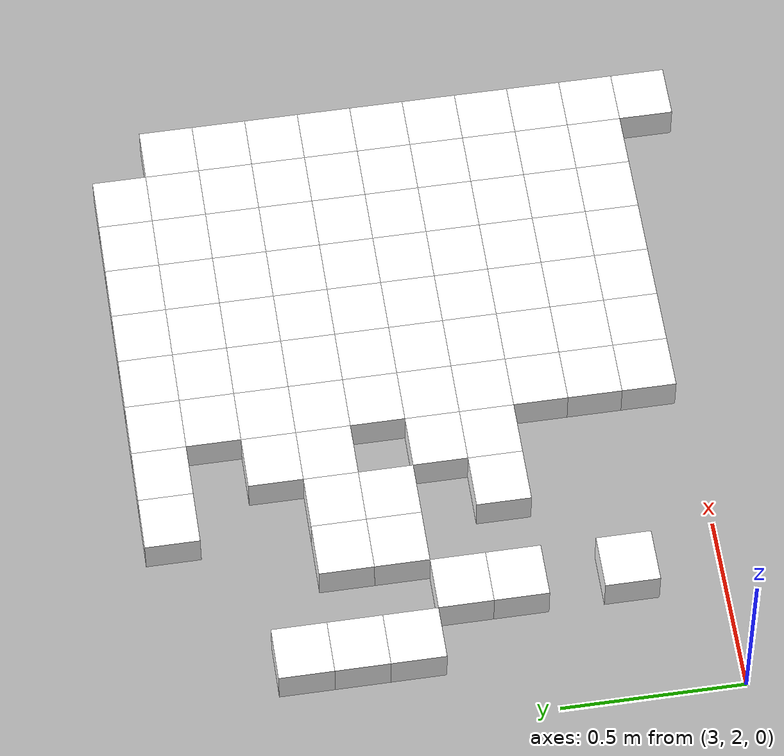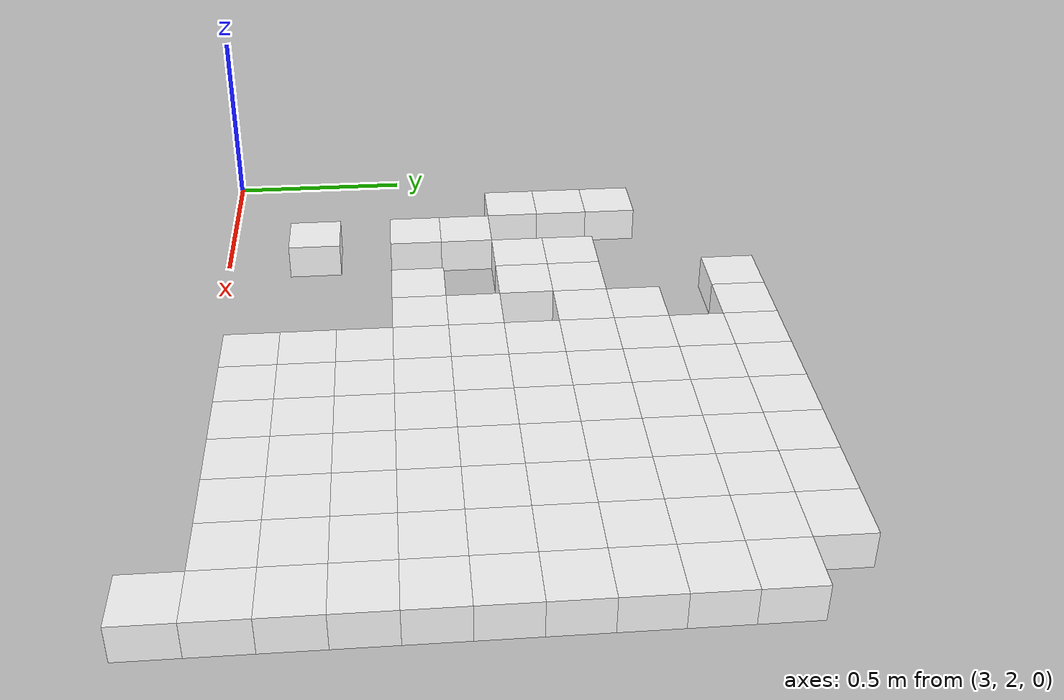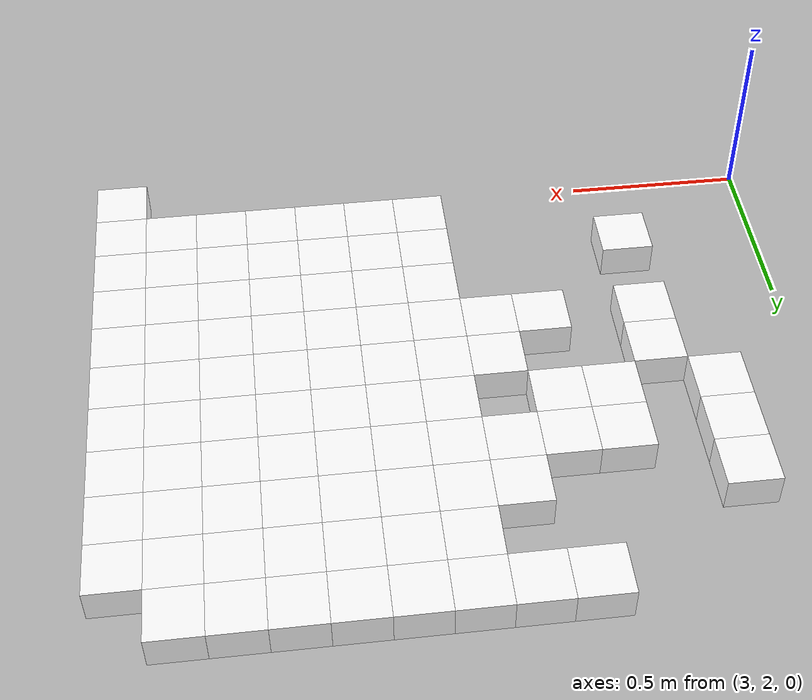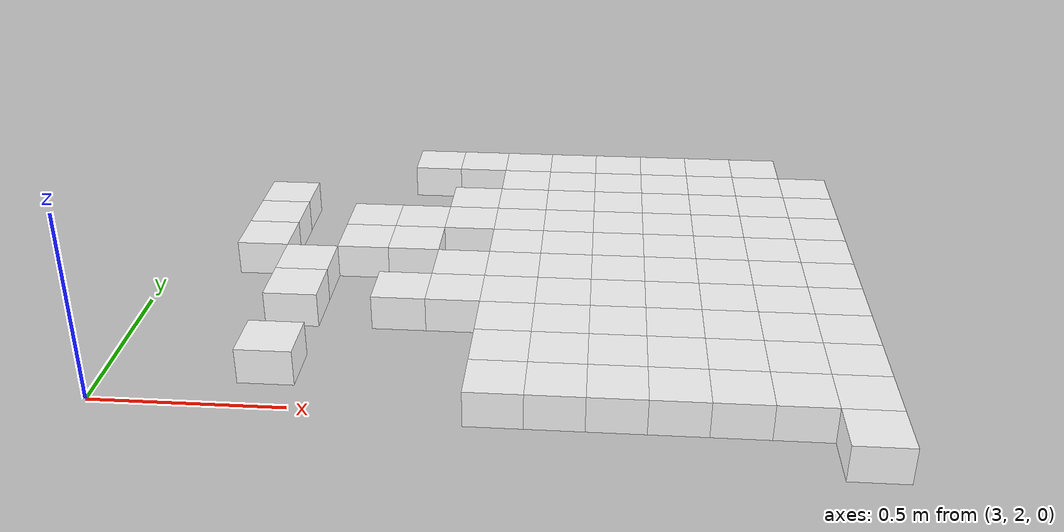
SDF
<sdf version="1.7">
 <world name="default">
  <include><uri>model://sun</uri></include>
  <model name="static_environment">
   <static>true</static>
   <link name="region_496">
    <pose>3.400000000000003 2.2499999999999996 0.0 0.0 0.0 0.0</pose>
    <collision name="region_496_collision">
     <geometry><box><size>0.15 0.15 0.1</size></box></geometry>
     <surface><friction><ode><mu>1.0</mu><mu2>1.0</mu2></ode></friction></surface>
    </collision>
    <visual name="region_496_visual">
     <geometry><box><size>0.15 0.15 0.1</size></box></geometry>
     <material><ambient>1.0 1.0 1.0 1.0</ambient><diffuse>1.0 1.0 1.0 1.0</diffuse></material>
    </visual>
   </link>
   <link name="region_510">
    <pose>3.400000000000003 2.5499999999999994 0.0 0.0 0.0 0.0</pose>
    <collision name="region_510_collision">
     <geometry><box><size>0.15 0.15 0.1</size></box></geometry>
     <surface><friction><ode><mu>1.0</mu><mu2>1.0</mu2></ode></friction></surface>
    </collision>
    <visual name="region_510_visual">
     <geometry><box><size>0.15 0.15 0.1</size></box></geometry>
     <material><ambient>1.0 1.0 1.0 1.0</ambient><diffuse>1.0 1.0 1.0 1.0</diffuse></material>
    </visual>
   </link>
   <link name="region_511">
    <pose>3.7000000000000037 2.5499999999999994 0.0 0.0 0.0 0.0</pose>
    <collision name="region_511_collision">
     <geometry><box><size>0.15 0.15 0.1</size></box></geometry>
     <surface><friction><ode><mu>1.0</mu><mu2>1.0</mu2></ode></friction></surface>
    </collision>
    <visual name="region_511_visual">
     <geometry><box><size>0.15 0.15 0.1</size></box></geometry>
     <material><ambient>1.0 1.0 1.0 1.0</ambient><diffuse>1.0 1.0 1.0 1.0</diffuse></material>
    </visual>
   </link>
   <link name="region_512">
    <pose>3.850000000000004 2.5499999999999994 0.0 0.0 0.0 0.0</pose>
    <collision name="region_512_collision">
     <geometry><box><size>0.15 0.15 0.1</size></box></geometry>
     <surface><friction><ode><mu>1.0</mu><mu2>1.0</mu2></ode></friction></surface>
    </collision>
    <visual name="region_512_visual">
     <geometry><box><size>0.15 0.15 0.1</size></box></geometry>
     <material><ambient>1.0 1.0 1.0 1.0</ambient><diffuse>1.0 1.0 1.0 1.0</diffuse></material>
    </visual>
   </link>
   <link name="region_518">
    <pose>3.400000000000003 2.6999999999999997 0.0 0.0 0.0 0.0</pose>
    <collision name="region_518_collision">
     <geometry><box><size>0.15 0.15 0.1</size></box></geometry>
     <surface><friction><ode><mu>1.0</mu><mu2>1.0</mu2></ode></friction></surface>
    </collision>
    <visual name="region_518_visual">
     <geometry><box><size>0.15 0.15 0.1</size></box></geometry>
     <material><ambient>1.0 1.0 1.0 1.0</ambient><diffuse>1.0 1.0 1.0 1.0</diffuse></material>
    </visual>
   </link>
   <link name="region_519">
    <pose>3.850000000000004 2.6999999999999997 0.0 0.0 0.0 0.0</pose>
    <collision name="region_519_collision">
     <geometry><box><size>0.15 0.15 0.1</size></box></geometry>
     <surface><friction><ode><mu>1.0</mu><mu2>1.0</mu2></ode></friction></surface>
    </collision>
    <visual name="region_519_visual">
     <geometry><box><size>0.15 0.15 0.1</size></box></geometry>
     <material><ambient>1.0 1.0 1.0 1.0</ambient><diffuse>1.0 1.0 1.0 1.0</diffuse></material>
    </visual>
   </link>
   <link name="region_525">
    <pose>3.2500000000000027 2.8499999999999996 0.0 0.0 0.0 0.0</pose>
    <collision name="region_525_collision">
     <geometry><box><size>0.15 0.15 0.1</size></box></geometry>
     <surface><friction><ode><mu>1.0</mu><mu2>1.0</mu2></ode></friction></surface>
    </collision>
    <visual name="region_525_visual">
     <geometry><box><size>0.15 0.15 0.1</size></box></geometry>
     <material><ambient>1.0 1.0 1.0 1.0</ambient><diffuse>1.0 1.0 1.0 1.0</diffuse></material>
    </visual>
   </link>
   <link name="region_526">
    <pose>3.5500000000000034 2.8499999999999996 0.0 0.0 0.0 0.0</pose>
    <collision name="region_526_collision">
     <geometry><box><size>0.15 0.15 0.1</size></box></geometry>
     <surface><friction><ode><mu>1.0</mu><mu2>1.0</mu2></ode></friction></surface>
    </collision>
    <visual name="region_526_visual">
     <geometry><box><size>0.15 0.15 0.1</size></box></geometry>
     <material><ambient>1.0 1.0 1.0 1.0</ambient><diffuse>1.0 1.0 1.0 1.0</diffuse></material>
    </visual>
   </link>
   <link name="region_527">
    <pose>3.7000000000000037 2.8499999999999996 0.0 0.0 0.0 0.0</pose>
    <collision name="region_527_collision">
     <geometry><box><size>0.15 0.15 0.1</size></box></geometry>
     <surface><friction><ode><mu>1.0</mu><mu2>1.0</mu2></ode></friction></surface>
    </collision>
    <visual name="region_527_visual">
     <geometry><box><size>0.15 0.15 0.1</size></box></geometry>
     <material><ambient>1.0 1.0 1.0 1.0</ambient><diffuse>1.0 1.0 1.0 1.0</diffuse></material>
    </visual>
   </link>
   <link name="region_537">
    <pose>3.2500000000000027 2.9999999999999996 0.0 0.0 0.0 0.0</pose>
    <collision name="region_537_collision">
     <geometry><box><size>0.15 0.15 0.1</size></box></geometry>
     <surface><friction><ode><mu>1.0</mu><mu2>1.0</mu2></ode></friction></surface>
    </collision>
    <visual name="region_537_visual">
     <geometry><box><size>0.15 0.15 0.1</size></box></geometry>
     <material><ambient>1.0 1.0 1.0 1.0</ambient><diffuse>1.0 1.0 1.0 1.0</diffuse></material>
    </visual>
   </link>
   <link name="region_538">
    <pose>3.5500000000000034 2.9999999999999996 0.0 0.0 0.0 0.0</pose>
    <collision name="region_538_collision">
     <geometry><box><size>0.15 0.15 0.1</size></box></geometry>
     <surface><friction><ode><mu>1.0</mu><mu2>1.0</mu2></ode></friction></surface>
    </collision>
    <visual name="region_538_visual">
     <geometry><box><size>0.15 0.15 0.1</size></box></geometry>
     <material><ambient>1.0 1.0 1.0 1.0</ambient><diffuse>1.0 1.0 1.0 1.0</diffuse></material>
    </visual>
   </link>
   <link name="region_539">
    <pose>3.7000000000000037 2.9999999999999996 0.0 0.0 0.0 0.0</pose>
    <collision name="region_539_collision">
     <geometry><box><size>0.15 0.15 0.1</size></box></geometry>
     <surface><friction><ode><mu>1.0</mu><mu2>1.0</mu2></ode></friction></surface>
    </collision>
    <visual name="region_539_visual">
     <geometry><box><size>0.15 0.15 0.1</size></box></geometry>
     <material><ambient>1.0 1.0 1.0 1.0</ambient><diffuse>1.0 1.0 1.0 1.0</diffuse></material>
    </visual>
   </link>
   <link name="region_540">
    <pose>3.850000000000004 2.9999999999999996 0.0 0.0 0.0 0.0</pose>
    <collision name="region_540_collision">
     <geometry><box><size>0.15 0.15 0.1</size></box></geometry>
     <surface><friction><ode><mu>1.0</mu><mu2>1.0</mu2></ode></friction></surface>
    </collision>
    <visual name="region_540_visual">
     <geometry><box><size>0.15 0.15 0.1</size></box></geometry>
     <material><ambient>1.0 1.0 1.0 1.0</ambient><diffuse>1.0 1.0 1.0 1.0</diffuse></material>
    </visual>
   </link>
   <link name="region_546">
    <pose>3.2500000000000027 3.1499999999999995 0.0 0.0 0.0 0.0</pose>
    <collision name="region_546_collision">
     <geometry><box><size>0.15 0.15 0.1</size></box></geometry>
     <surface><friction><ode><mu>1.0</mu><mu2>1.0</mu2></ode></friction></surface>
    </collision>
    <visual name="region_546_visual">
     <geometry><box><size>0.15 0.15 0.1</size></box></geometry>
     <material><ambient>1.0 1.0 1.0 1.0</ambient><diffuse>1.0 1.0 1.0 1.0</diffuse></material>
    </visual>
   </link>
   <link name="region_547">
    <pose>3.850000000000004 3.1499999999999995 0.0 0.0 0.0 0.0</pose>
    <collision name="region_547_collision">
     <geometry><box><size>0.15 0.15 0.1</size></box></geometry>
     <surface><friction><ode><mu>1.0</mu><mu2>1.0</mu2></ode></friction></surface>
    </collision>
    <visual name="region_547_visual">
     <geometry><box><size>0.15 0.15 0.1</size></box></geometry>
     <material><ambient>1.0 1.0 1.0 1.0</ambient><diffuse>1.0 1.0 1.0 1.0</diffuse></material>
    </visual>
   </link>
   <link name="region_562">
    <pose>3.7000000000000037 3.4499999999999993 0.0 0.0 0.0 0.0</pose>
    <collision name="region_562_collision">
     <geometry><box><size>0.15 0.15 0.1</size></box></geometry>
     <surface><friction><ode><mu>1.0</mu><mu2>1.0</mu2></ode></friction></surface>
    </collision>
    <visual name="region_562_visual">
     <geometry><box><size>0.15 0.15 0.1</size></box></geometry>
     <material><ambient>1.0 1.0 1.0 1.0</ambient><diffuse>1.0 1.0 1.0 1.0</diffuse></material>
    </visual>
   </link>
   <link name="region_563">
    <pose>3.850000000000004 3.4499999999999993 0.0 0.0 0.0 0.0</pose>
    <collision name="region_563_collision">
     <geometry><box><size>0.15 0.15 0.1</size></box></geometry>
     <surface><friction><ode><mu>1.0</mu><mu2>1.0</mu2></ode></friction></surface>
    </collision>
    <visual name="region_563_visual">
     <geometry><box><size>0.15 0.15 0.1</size></box></geometry>
     <material><ambient>1.0 1.0 1.0 1.0</ambient><diffuse>1.0 1.0 1.0 1.0</diffuse></material>
    </visual>
   </link>
   <link name="region_750">
    <pose>4.900000000000002 1.9499999999999997 0.0 0.0 0.0 0.0</pose>
    <collision name="region_750_collision">
     <geometry><box><size>0.15 0.15 0.1</size></box></geometry>
     <surface><friction><ode><mu>1.0</mu><mu2>1.0</mu2></ode></friction></surface>
    </collision>
    <visual name="region_750_visual">
     <geometry><box><size>0.15 0.15 0.1</size></box></geometry>
     <material><ambient>1.0 1.0 1.0 1.0</ambient><diffuse>1.0 1.0 1.0 1.0</diffuse></material>
    </visual>
   </link>
   <link name="region_764">
    <pose>4.0 2.0999999999999996 0.0 0.0 0.0 0.0</pose>
    <collision name="region_764_collision">
     <geometry><box><size>0.15 0.15 0.1</size></box></geometry>
     <surface><friction><ode><mu>1.0</mu><mu2>1.0</mu2></ode></friction></surface>
    </collision>
    <visual name="region_764_visual">
     <geometry><box><size>0.15 0.15 0.1</size></box></geometry>
     <material><ambient>1.0 1.0 1.0 1.0</ambient><diffuse>1.0 1.0 1.0 1.0</diffuse></material>
    </visual>
   </link>
   <link name="region_765">
    <pose>4.15 2.0999999999999996 0.0 0.0 0.0 0.0</pose>
    <collision name="region_765_collision">
     <geometry><box><size>0.15 0.15 0.1</size></box></geometry>
     <surface><friction><ode><mu>1.0</mu><mu2>1.0</mu2></ode></friction></surface>
    </collision>
    <visual name="region_765_visual">
     <geometry><box><size>0.15 0.15 0.1</size></box></geometry>
     <material><ambient>1.0 1.0 1.0 1.0</ambient><diffuse>1.0 1.0 1.0 1.0</diffuse></material>
    </visual>
   </link>
   <link name="region_766">
    <pose>4.300000000000001 2.0999999999999996 0.0 0.0 0.0 0.0</pose>
    <collision name="region_766_collision">
     <geometry><box><size>0.15 0.15 0.1</size></box></geometry>
     <surface><friction><ode><mu>1.0</mu><mu2>1.0</mu2></ode></friction></surface>
    </collision>
    <visual name="region_766_visual">
     <geometry><box><size>0.15 0.15 0.1</size></box></geometry>
     <material><ambient>1.0 1.0 1.0 1.0</ambient><diffuse>1.0 1.0 1.0 1.0</diffuse></material>
    </visual>
   </link>
   <link name="region_767">
    <pose>4.450000000000001 2.0999999999999996 0.0 0.0 0.0 0.0</pose>
    <collision name="region_767_collision">
     <geometry><box><size>0.15 0.15 0.1</size></box></geometry>
     <surface><friction><ode><mu>1.0</mu><mu2>1.0</mu2></ode></friction></surface>
    </collision>
    <visual name="region_767_visual">
     <geometry><box><size>0.15 0.15 0.1</size></box></geometry>
     <material><ambient>1.0 1.0 1.0 1.0</ambient><diffuse>1.0 1.0 1.0 1.0</diffuse></material>
    </visual>
   </link>
   <link name="region_768">
    <pose>4.600000000000001 2.0999999999999996 0.0 0.0 0.0 0.0</pose>
    <collision name="region_768_collision">
     <geometry><box><size>0.15 0.15 0.1</size></box></geometry>
     <surface><friction><ode><mu>1.0</mu><mu2>1.0</mu2></ode></friction></surface>
    </collision>
    <visual name="region_768_visual">
     <geometry><box><size>0.15 0.15 0.1</size></box></geometry>
     <material><ambient>1.0 1.0 1.0 1.0</ambient><diffuse>1.0 1.0 1.0 1.0</diffuse></material>
    </visual>
   </link>
   <link name="region_769">
    <pose>4.750000000000002 2.0999999999999996 0.0 0.0 0.0 0.0</pose>
    <collision name="region_769_collision">
     <geometry><box><size>0.15 0.15 0.1</size></box></geometry>
     <surface><friction><ode><mu>1.0</mu><mu2>1.0</mu2></ode></friction></surface>
    </collision>
    <visual name="region_769_visual">
     <geometry><box><size>0.15 0.15 0.1</size></box></geometry>
     <material><ambient>1.0 1.0 1.0 1.0</ambient><diffuse>1.0 1.0 1.0 1.0</diffuse></material>
    </visual>
   </link>
   <link name="region_770">
    <pose>4.900000000000002 2.0999999999999996 0.0 0.0 0.0 0.0</pose>
    <collision name="region_770_collision">
     <geometry><box><size>0.15 0.15 0.1</size></box></geometry>
     <surface><friction><ode><mu>1.0</mu><mu2>1.0</mu2></ode></friction></surface>
    </collision>
    <visual name="region_770_visual">
     <geometry><box><size>0.15 0.15 0.1</size></box></geometry>
     <material><ambient>1.0 1.0 1.0 1.0</ambient><diffuse>1.0 1.0 1.0 1.0</diffuse></material>
    </visual>
   </link>
   <link name="region_784">
    <pose>4.0 2.2499999999999996 0.0 0.0 0.0 0.0</pose>
    <collision name="region_784_collision">
     <geometry><box><size>0.15 0.15 0.1</size></box></geometry>
     <surface><friction><ode><mu>1.0</mu><mu2>1.0</mu2></ode></friction></surface>
    </collision>
    <visual name="region_784_visual">
     <geometry><box><size>0.15 0.15 0.1</size></box></geometry>
     <material><ambient>1.0 1.0 1.0 1.0</ambient><diffuse>1.0 1.0 1.0 1.0</diffuse></material>
    </visual>
   </link>
   <link name="region_785">
    <pose>4.15 2.2499999999999996 0.0 0.0 0.0 0.0</pose>
    <collision name="region_785_collision">
     <geometry><box><size>0.15 0.15 0.1</size></box></geometry>
     <surface><friction><ode><mu>1.0</mu><mu2>1.0</mu2></ode></friction></surface>
    </collision>
    <visual name="region_785_visual">
     <geometry><box><size>0.15 0.15 0.1</size></box></geometry>
     <material><ambient>1.0 1.0 1.0 1.0</ambient><diffuse>1.0 1.0 1.0 1.0</diffuse></material>
    </visual>
   </link>
   <link name="region_786">
    <pose>4.300000000000001 2.2499999999999996 0.0 0.0 0.0 0.0</pose>
    <collision name="region_786_collision">
     <geometry><box><size>0.15 0.15 0.1</size></box></geometry>
     <surface><friction><ode><mu>1.0</mu><mu2>1.0</mu2></ode></friction></surface>
    </collision>
    <visual name="region_786_visual">
     <geometry><box><size>0.15 0.15 0.1</size></box></geometry>
     <material><ambient>1.0 1.0 1.0 1.0</ambient><diffuse>1.0 1.0 1.0 1.0</diffuse></material>
    </visual>
   </link>
   <link name="region_787">
    <pose>4.450000000000001 2.2499999999999996 0.0 0.0 0.0 0.0</pose>
    <collision name="region_787_collision">
     <geometry><box><size>0.15 0.15 0.1</size></box></geometry>
     <surface><friction><ode><mu>1.0</mu><mu2>1.0</mu2></ode></friction></surface>
    </collision>
    <visual name="region_787_visual">
     <geometry><box><size>0.15 0.15 0.1</size></box></geometry>
     <material><ambient>1.0 1.0 1.0 1.0</ambient><diffuse>1.0 1.0 1.0 1.0</diffuse></material>
    </visual>
   </link>
   <link name="region_788">
    <pose>4.600000000000001 2.2499999999999996 0.0 0.0 0.0 0.0</pose>
    <collision name="region_788_collision">
     <geometry><box><size>0.15 0.15 0.1</size></box></geometry>
     <surface><friction><ode><mu>1.0</mu><mu2>1.0</mu2></ode></friction></surface>
    </collision>
    <visual name="region_788_visual">
     <geometry><box><size>0.15 0.15 0.1</size></box></geometry>
     <material><ambient>1.0 1.0 1.0 1.0</ambient><diffuse>1.0 1.0 1.0 1.0</diffuse></material>
    </visual>
   </link>
   <link name="region_789">
    <pose>4.750000000000002 2.2499999999999996 0.0 0.0 0.0 0.0</pose>
    <collision name="region_789_collision">
     <geometry><box><size>0.15 0.15 0.1</size></box></geometry>
     <surface><friction><ode><mu>1.0</mu><mu2>1.0</mu2></ode></friction></surface>
    </collision>
    <visual name="region_789_visual">
     <geometry><box><size>0.15 0.15 0.1</size></box></geometry>
     <material><ambient>1.0 1.0 1.0 1.0</ambient><diffuse>1.0 1.0 1.0 1.0</diffuse></material>
    </visual>
   </link>
   <link name="region_790">
    <pose>4.900000000000002 2.2499999999999996 0.0 0.0 0.0 0.0</pose>
    <collision name="region_790_collision">
     <geometry><box><size>0.15 0.15 0.1</size></box></geometry>
     <surface><friction><ode><mu>1.0</mu><mu2>1.0</mu2></ode></friction></surface>
    </collision>
    <visual name="region_790_visual">
     <geometry><box><size>0.15 0.15 0.1</size></box></geometry>
     <material><ambient>1.0 1.0 1.0 1.0</ambient><diffuse>1.0 1.0 1.0 1.0</diffuse></material>
    </visual>
   </link>
   <link name="region_804">
    <pose>4.0 2.3999999999999995 0.0 0.0 0.0 0.0</pose>
    <collision name="region_804_collision">
     <geometry><box><size>0.15 0.15 0.1</size></box></geometry>
     <surface><friction><ode><mu>1.0</mu><mu2>1.0</mu2></ode></friction></surface>
    </collision>
    <visual name="region_804_visual">
     <geometry><box><size>0.15 0.15 0.1</size></box></geometry>
     <material><ambient>1.0 1.0 1.0 1.0</ambient><diffuse>1.0 1.0 1.0 1.0</diffuse></material>
    </visual>
   </link>
   <link name="region_805">
    <pose>4.15 2.3999999999999995 0.0 0.0 0.0 0.0</pose>
    <collision name="region_805_collision">
     <geometry><box><size>0.15 0.15 0.1</size></box></geometry>
     <surface><friction><ode><mu>1.0</mu><mu2>1.0</mu2></ode></friction></surface>
    </collision>
    <visual name="region_805_visual">
     <geometry><box><size>0.15 0.15 0.1</size></box></geometry>
     <material><ambient>1.0 1.0 1.0 1.0</ambient><diffuse>1.0 1.0 1.0 1.0</diffuse></material>
    </visual>
   </link>
   <link name="region_806">
    <pose>4.300000000000001 2.3999999999999995 0.0 0.0 0.0 0.0</pose>
    <collision name="region_806_collision">
     <geometry><box><size>0.15 0.15 0.1</size></box></geometry>
     <surface><friction><ode><mu>1.0</mu><mu2>1.0</mu2></ode></friction></surface>
    </collision>
    <visual name="region_806_visual">
     <geometry><box><size>0.15 0.15 0.1</size></box></geometry>
     <material><ambient>1.0 1.0 1.0 1.0</ambient><diffuse>1.0 1.0 1.0 1.0</diffuse></material>
    </visual>
   </link>
   <link name="region_807">
    <pose>4.450000000000001 2.3999999999999995 0.0 0.0 0.0 0.0</pose>
    <collision name="region_807_collision">
     <geometry><box><size>0.15 0.15 0.1</size></box></geometry>
     <surface><friction><ode><mu>1.0</mu><mu2>1.0</mu2></ode></friction></surface>
    </collision>
    <visual name="region_807_visual">
     <geometry><box><size>0.15 0.15 0.1</size></box></geometry>
     <material><ambient>1.0 1.0 1.0 1.0</ambient><diffuse>1.0 1.0 1.0 1.0</diffuse></material>
    </visual>
   </link>
   <link name="region_808">
    <pose>4.600000000000001 2.3999999999999995 0.0 0.0 0.0 0.0</pose>
    <collision name="region_808_collision">
     <geometry><box><size>0.15 0.15 0.1</size></box></geometry>
     <surface><friction><ode><mu>1.0</mu><mu2>1.0</mu2></ode></friction></surface>
    </collision>
    <visual name="region_808_visual">
     <geometry><box><size>0.15 0.15 0.1</size></box></geometry>
     <material><ambient>1.0 1.0 1.0 1.0</ambient><diffuse>1.0 1.0 1.0 1.0</diffuse></material>
    </visual>
   </link>
   <link name="region_809">
    <pose>4.750000000000002 2.3999999999999995 0.0 0.0 0.0 0.0</pose>
    <collision name="region_809_collision">
     <geometry><box><size>0.15 0.15 0.1</size></box></geometry>
     <surface><friction><ode><mu>1.0</mu><mu2>1.0</mu2></ode></friction></surface>
    </collision>
    <visual name="region_809_visual">
     <geometry><box><size>0.15 0.15 0.1</size></box></geometry>
     <material><ambient>1.0 1.0 1.0 1.0</ambient><diffuse>1.0 1.0 1.0 1.0</diffuse></material>
    </visual>
   </link>
   <link name="region_810">
    <pose>4.900000000000002 2.3999999999999995 0.0 0.0 0.0 0.0</pose>
    <collision name="region_810_collision">
     <geometry><box><size>0.15 0.15 0.1</size></box></geometry>
     <surface><friction><ode><mu>1.0</mu><mu2>1.0</mu2></ode></friction></surface>
    </collision>
    <visual name="region_810_visual">
     <geometry><box><size>0.15 0.15 0.1</size></box></geometry>
     <material><ambient>1.0 1.0 1.0 1.0</ambient><diffuse>1.0 1.0 1.0 1.0</diffuse></material>
    </visual>
   </link>
   <link name="region_824">
    <pose>4.0 2.5499999999999994 0.0 0.0 0.0 0.0</pose>
    <collision name="region_824_collision">
     <geometry><box><size>0.15 0.15 0.1</size></box></geometry>
     <surface><friction><ode><mu>1.0</mu><mu2>1.0</mu2></ode></friction></surface>
    </collision>
    <visual name="region_824_visual">
     <geometry><box><size>0.15 0.15 0.1</size></box></geometry>
     <material><ambient>1.0 1.0 1.0 1.0</ambient><diffuse>1.0 1.0 1.0 1.0</diffuse></material>
    </visual>
   </link>
   <link name="region_825">
    <pose>4.15 2.5499999999999994 0.0 0.0 0.0 0.0</pose>
    <collision name="region_825_collision">
     <geometry><box><size>0.15 0.15 0.1</size></box></geometry>
     <surface><friction><ode><mu>1.0</mu><mu2>1.0</mu2></ode></friction></surface>
    </collision>
    <visual name="region_825_visual">
     <geometry><box><size>0.15 0.15 0.1</size></box></geometry>
     <material><ambient>1.0 1.0 1.0 1.0</ambient><diffuse>1.0 1.0 1.0 1.0</diffuse></material>
    </visual>
   </link>
   <link name="region_826">
    <pose>4.300000000000001 2.5499999999999994 0.0 0.0 0.0 0.0</pose>
    <collision name="region_826_collision">
     <geometry><box><size>0.15 0.15 0.1</size></box></geometry>
     <surface><friction><ode><mu>1.0</mu><mu2>1.0</mu2></ode></friction></surface>
    </collision>
    <visual name="region_826_visual">
     <geometry><box><size>0.15 0.15 0.1</size></box></geometry>
     <material><ambient>1.0 1.0 1.0 1.0</ambient><diffuse>1.0 1.0 1.0 1.0</diffuse></material>
    </visual>
   </link>
   <link name="region_827">
    <pose>4.450000000000001 2.5499999999999994 0.0 0.0 0.0 0.0</pose>
    <collision name="region_827_collision">
     <geometry><box><size>0.15 0.15 0.1</size></box></geometry>
     <surface><friction><ode><mu>1.0</mu><mu2>1.0</mu2></ode></friction></surface>
    </collision>
    <visual name="region_827_visual">
     <geometry><box><size>0.15 0.15 0.1</size></box></geometry>
     <material><ambient>1.0 1.0 1.0 1.0</ambient><diffuse>1.0 1.0 1.0 1.0</diffuse></material>
    </visual>
   </link>
   <link name="region_828">
    <pose>4.600000000000001 2.5499999999999994 0.0 0.0 0.0 0.0</pose>
    <collision name="region_828_collision">
     <geometry><box><size>0.15 0.15 0.1</size></box></geometry>
     <surface><friction><ode><mu>1.0</mu><mu2>1.0</mu2></ode></friction></surface>
    </collision>
    <visual name="region_828_visual">
     <geometry><box><size>0.15 0.15 0.1</size></box></geometry>
     <material><ambient>1.0 1.0 1.0 1.0</ambient><diffuse>1.0 1.0 1.0 1.0</diffuse></material>
    </visual>
   </link>
   <link name="region_829">
    <pose>4.750000000000002 2.5499999999999994 0.0 0.0 0.0 0.0</pose>
    <collision name="region_829_collision">
     <geometry><box><size>0.15 0.15 0.1</size></box></geometry>
     <surface><friction><ode><mu>1.0</mu><mu2>1.0</mu2></ode></friction></surface>
    </collision>
    <visual name="region_829_visual">
     <geometry><box><size>0.15 0.15 0.1</size></box></geometry>
     <material><ambient>1.0 1.0 1.0 1.0</ambient><diffuse>1.0 1.0 1.0 1.0</diffuse></material>
    </visual>
   </link>
   <link name="region_830">
    <pose>4.900000000000002 2.5499999999999994 0.0 0.0 0.0 0.0</pose>
    <collision name="region_830_collision">
     <geometry><box><size>0.15 0.15 0.1</size></box></geometry>
     <surface><friction><ode><mu>1.0</mu><mu2>1.0</mu2></ode></friction></surface>
    </collision>
    <visual name="region_830_visual">
     <geometry><box><size>0.15 0.15 0.1</size></box></geometry>
     <material><ambient>1.0 1.0 1.0 1.0</ambient><diffuse>1.0 1.0 1.0 1.0</diffuse></material>
    </visual>
   </link>
   <link name="region_844">
    <pose>4.0 2.6999999999999997 0.0 0.0 0.0 0.0</pose>
    <collision name="region_844_collision">
     <geometry><box><size>0.15 0.15 0.1</size></box></geometry>
     <surface><friction><ode><mu>1.0</mu><mu2>1.0</mu2></ode></friction></surface>
    </collision>
    <visual name="region_844_visual">
     <geometry><box><size>0.15 0.15 0.1</size></box></geometry>
     <material><ambient>1.0 1.0 1.0 1.0</ambient><diffuse>1.0 1.0 1.0 1.0</diffuse></material>
    </visual>
   </link>
   <link name="region_845">
    <pose>4.15 2.6999999999999997 0.0 0.0 0.0 0.0</pose>
    <collision name="region_845_collision">
     <geometry><box><size>0.15 0.15 0.1</size></box></geometry>
     <surface><friction><ode><mu>1.0</mu><mu2>1.0</mu2></ode></friction></surface>
    </collision>
    <visual name="region_845_visual">
     <geometry><box><size>0.15 0.15 0.1</size></box></geometry>
     <material><ambient>1.0 1.0 1.0 1.0</ambient><diffuse>1.0 1.0 1.0 1.0</diffuse></material>
    </visual>
   </link>
   <link name="region_846">
    <pose>4.300000000000001 2.6999999999999997 0.0 0.0 0.0 0.0</pose>
    <collision name="region_846_collision">
     <geometry><box><size>0.15 0.15 0.1</size></box></geometry>
     <surface><friction><ode><mu>1.0</mu><mu2>1.0</mu2></ode></friction></surface>
    </collision>
    <visual name="region_846_visual">
     <geometry><box><size>0.15 0.15 0.1</size></box></geometry>
     <material><ambient>1.0 1.0 1.0 1.0</ambient><diffuse>1.0 1.0 1.0 1.0</diffuse></material>
    </visual>
   </link>
   <link name="region_847">
    <pose>4.450000000000001 2.6999999999999997 0.0 0.0 0.0 0.0</pose>
    <collision name="region_847_collision">
     <geometry><box><size>0.15 0.15 0.1</size></box></geometry>
     <surface><friction><ode><mu>1.0</mu><mu2>1.0</mu2></ode></friction></surface>
    </collision>
    <visual name="region_847_visual">
     <geometry><box><size>0.15 0.15 0.1</size></box></geometry>
     <material><ambient>1.0 1.0 1.0 1.0</ambient><diffuse>1.0 1.0 1.0 1.0</diffuse></material>
    </visual>
   </link>
   <link name="region_848">
    <pose>4.600000000000001 2.6999999999999997 0.0 0.0 0.0 0.0</pose>
    <collision name="region_848_collision">
     <geometry><box><size>0.15 0.15 0.1</size></box></geometry>
     <surface><friction><ode><mu>1.0</mu><mu2>1.0</mu2></ode></friction></surface>
    </collision>
    <visual name="region_848_visual">
     <geometry><box><size>0.15 0.15 0.1</size></box></geometry>
     <material><ambient>1.0 1.0 1.0 1.0</ambient><diffuse>1.0 1.0 1.0 1.0</diffuse></material>
    </visual>
   </link>
   <link name="region_849">
    <pose>4.750000000000002 2.6999999999999997 0.0 0.0 0.0 0.0</pose>
    <collision name="region_849_collision">
     <geometry><box><size>0.15 0.15 0.1</size></box></geometry>
     <surface><friction><ode><mu>1.0</mu><mu2>1.0</mu2></ode></friction></surface>
    </collision>
    <visual name="region_849_visual">
     <geometry><box><size>0.15 0.15 0.1</size></box></geometry>
     <material><ambient>1.0 1.0 1.0 1.0</ambient><diffuse>1.0 1.0 1.0 1.0</diffuse></material>
    </visual>
   </link>
   <link name="region_850">
    <pose>4.900000000000002 2.6999999999999997 0.0 0.0 0.0 0.0</pose>
    <collision name="region_850_collision">
     <geometry><box><size>0.15 0.15 0.1</size></box></geometry>
     <surface><friction><ode><mu>1.0</mu><mu2>1.0</mu2></ode></friction></surface>
    </collision>
    <visual name="region_850_visual">
     <geometry><box><size>0.15 0.15 0.1</size></box></geometry>
     <material><ambient>1.0 1.0 1.0 1.0</ambient><diffuse>1.0 1.0 1.0 1.0</diffuse></material>
    </visual>
   </link>
   <link name="region_864">
    <pose>4.0 2.8499999999999996 0.0 0.0 0.0 0.0</pose>
    <collision name="region_864_collision">
     <geometry><box><size>0.15 0.15 0.1</size></box></geometry>
     <surface><friction><ode><mu>1.0</mu><mu2>1.0</mu2></ode></friction></surface>
    </collision>
    <visual name="region_864_visual">
     <geometry><box><size>0.15 0.15 0.1</size></box></geometry>
     <material><ambient>1.0 1.0 1.0 1.0</ambient><diffuse>1.0 1.0 1.0 1.0</diffuse></material>
    </visual>
   </link>
   <link name="region_865">
    <pose>4.15 2.8499999999999996 0.0 0.0 0.0 0.0</pose>
    <collision name="region_865_collision">
     <geometry><box><size>0.15 0.15 0.1</size></box></geometry>
     <surface><friction><ode><mu>1.0</mu><mu2>1.0</mu2></ode></friction></surface>
    </collision>
    <visual name="region_865_visual">
     <geometry><box><size>0.15 0.15 0.1</size></box></geometry>
     <material><ambient>1.0 1.0 1.0 1.0</ambient><diffuse>1.0 1.0 1.0 1.0</diffuse></material>
    </visual>
   </link>
   <link name="region_866">
    <pose>4.300000000000001 2.8499999999999996 0.0 0.0 0.0 0.0</pose>
    <collision name="region_866_collision">
     <geometry><box><size>0.15 0.15 0.1</size></box></geometry>
     <surface><friction><ode><mu>1.0</mu><mu2>1.0</mu2></ode></friction></surface>
    </collision>
    <visual name="region_866_visual">
     <geometry><box><size>0.15 0.15 0.1</size></box></geometry>
     <material><ambient>1.0 1.0 1.0 1.0</ambient><diffuse>1.0 1.0 1.0 1.0</diffuse></material>
    </visual>
   </link>
   <link name="region_867">
    <pose>4.450000000000001 2.8499999999999996 0.0 0.0 0.0 0.0</pose>
    <collision name="region_867_collision">
     <geometry><box><size>0.15 0.15 0.1</size></box></geometry>
     <surface><friction><ode><mu>1.0</mu><mu2>1.0</mu2></ode></friction></surface>
    </collision>
    <visual name="region_867_visual">
     <geometry><box><size>0.15 0.15 0.1</size></box></geometry>
     <material><ambient>1.0 1.0 1.0 1.0</ambient><diffuse>1.0 1.0 1.0 1.0</diffuse></material>
    </visual>
   </link>
   <link name="region_868">
    <pose>4.600000000000001 2.8499999999999996 0.0 0.0 0.0 0.0</pose>
    <collision name="region_868_collision">
     <geometry><box><size>0.15 0.15 0.1</size></box></geometry>
     <surface><friction><ode><mu>1.0</mu><mu2>1.0</mu2></ode></friction></surface>
    </collision>
    <visual name="region_868_visual">
     <geometry><box><size>0.15 0.15 0.1</size></box></geometry>
     <material><ambient>1.0 1.0 1.0 1.0</ambient><diffuse>1.0 1.0 1.0 1.0</diffuse></material>
    </visual>
   </link>
   <link name="region_869">
    <pose>4.750000000000002 2.8499999999999996 0.0 0.0 0.0 0.0</pose>
    <collision name="region_869_collision">
     <geometry><box><size>0.15 0.15 0.1</size></box></geometry>
     <surface><friction><ode><mu>1.0</mu><mu2>1.0</mu2></ode></friction></surface>
    </collision>
    <visual name="region_869_visual">
     <geometry><box><size>0.15 0.15 0.1</size></box></geometry>
     <material><ambient>1.0 1.0 1.0 1.0</ambient><diffuse>1.0 1.0 1.0 1.0</diffuse></material>
    </visual>
   </link>
   <link name="region_870">
    <pose>4.900000000000002 2.8499999999999996 0.0 0.0 0.0 0.0</pose>
    <collision name="region_870_collision">
     <geometry><box><size>0.15 0.15 0.1</size></box></geometry>
     <surface><friction><ode><mu>1.0</mu><mu2>1.0</mu2></ode></friction></surface>
    </collision>
    <visual name="region_870_visual">
     <geometry><box><size>0.15 0.15 0.1</size></box></geometry>
     <material><ambient>1.0 1.0 1.0 1.0</ambient><diffuse>1.0 1.0 1.0 1.0</diffuse></material>
    </visual>
   </link>
   <link name="region_884">
    <pose>4.0 2.9999999999999996 0.0 0.0 0.0 0.0</pose>
    <collision name="region_884_collision">
     <geometry><box><size>0.15 0.15 0.1</size></box></geometry>
     <surface><friction><ode><mu>1.0</mu><mu2>1.0</mu2></ode></friction></surface>
    </collision>
    <visual name="region_884_visual">
     <geometry><box><size>0.15 0.15 0.1</size></box></geometry>
     <material><ambient>1.0 1.0 1.0 1.0</ambient><diffuse>1.0 1.0 1.0 1.0</diffuse></material>
    </visual>
   </link>
   <link name="region_885">
    <pose>4.15 2.9999999999999996 0.0 0.0 0.0 0.0</pose>
    <collision name="region_885_collision">
     <geometry><box><size>0.15 0.15 0.1</size></box></geometry>
     <surface><friction><ode><mu>1.0</mu><mu2>1.0</mu2></ode></friction></surface>
    </collision>
    <visual name="region_885_visual">
     <geometry><box><size>0.15 0.15 0.1</size></box></geometry>
     <material><ambient>1.0 1.0 1.0 1.0</ambient><diffuse>1.0 1.0 1.0 1.0</diffuse></material>
    </visual>
   </link>
   <link name="region_886">
    <pose>4.300000000000001 2.9999999999999996 0.0 0.0 0.0 0.0</pose>
    <collision name="region_886_collision">
     <geometry><box><size>0.15 0.15 0.1</size></box></geometry>
     <surface><friction><ode><mu>1.0</mu><mu2>1.0</mu2></ode></friction></surface>
    </collision>
    <visual name="region_886_visual">
     <geometry><box><size>0.15 0.15 0.1</size></box></geometry>
     <material><ambient>1.0 1.0 1.0 1.0</ambient><diffuse>1.0 1.0 1.0 1.0</diffuse></material>
    </visual>
   </link>
   <link name="region_887">
    <pose>4.450000000000001 2.9999999999999996 0.0 0.0 0.0 0.0</pose>
    <collision name="region_887_collision">
     <geometry><box><size>0.15 0.15 0.1</size></box></geometry>
     <surface><friction><ode><mu>1.0</mu><mu2>1.0</mu2></ode></friction></surface>
    </collision>
    <visual name="region_887_visual">
     <geometry><box><size>0.15 0.15 0.1</size></box></geometry>
     <material><ambient>1.0 1.0 1.0 1.0</ambient><diffuse>1.0 1.0 1.0 1.0</diffuse></material>
    </visual>
   </link>
   <link name="region_888">
    <pose>4.600000000000001 2.9999999999999996 0.0 0.0 0.0 0.0</pose>
    <collision name="region_888_collision">
     <geometry><box><size>0.15 0.15 0.1</size></box></geometry>
     <surface><friction><ode><mu>1.0</mu><mu2>1.0</mu2></ode></friction></surface>
    </collision>
    <visual name="region_888_visual">
     <geometry><box><size>0.15 0.15 0.1</size></box></geometry>
     <material><ambient>1.0 1.0 1.0 1.0</ambient><diffuse>1.0 1.0 1.0 1.0</diffuse></material>
    </visual>
   </link>
   <link name="region_889">
    <pose>4.750000000000002 2.9999999999999996 0.0 0.0 0.0 0.0</pose>
    <collision name="region_889_collision">
     <geometry><box><size>0.15 0.15 0.1</size></box></geometry>
     <surface><friction><ode><mu>1.0</mu><mu2>1.0</mu2></ode></friction></surface>
    </collision>
    <visual name="region_889_visual">
     <geometry><box><size>0.15 0.15 0.1</size></box></geometry>
     <material><ambient>1.0 1.0 1.0 1.0</ambient><diffuse>1.0 1.0 1.0 1.0</diffuse></material>
    </visual>
   </link>
   <link name="region_890">
    <pose>4.900000000000002 2.9999999999999996 0.0 0.0 0.0 0.0</pose>
    <collision name="region_890_collision">
     <geometry><box><size>0.15 0.15 0.1</size></box></geometry>
     <surface><friction><ode><mu>1.0</mu><mu2>1.0</mu2></ode></friction></surface>
    </collision>
    <visual name="region_890_visual">
     <geometry><box><size>0.15 0.15 0.1</size></box></geometry>
     <material><ambient>1.0 1.0 1.0 1.0</ambient><diffuse>1.0 1.0 1.0 1.0</diffuse></material>
    </visual>
   </link>
   <link name="region_904">
    <pose>4.0 3.1499999999999995 0.0 0.0 0.0 0.0</pose>
    <collision name="region_904_collision">
     <geometry><box><size>0.15 0.15 0.1</size></box></geometry>
     <surface><friction><ode><mu>1.0</mu><mu2>1.0</mu2></ode></friction></surface>
    </collision>
    <visual name="region_904_visual">
     <geometry><box><size>0.15 0.15 0.1</size></box></geometry>
     <material><ambient>1.0 1.0 1.0 1.0</ambient><diffuse>1.0 1.0 1.0 1.0</diffuse></material>
    </visual>
   </link>
   <link name="region_905">
    <pose>4.15 3.1499999999999995 0.0 0.0 0.0 0.0</pose>
    <collision name="region_905_collision">
     <geometry><box><size>0.15 0.15 0.1</size></box></geometry>
     <surface><friction><ode><mu>1.0</mu><mu2>1.0</mu2></ode></friction></surface>
    </collision>
    <visual name="region_905_visual">
     <geometry><box><size>0.15 0.15 0.1</size></box></geometry>
     <material><ambient>1.0 1.0 1.0 1.0</ambient><diffuse>1.0 1.0 1.0 1.0</diffuse></material>
    </visual>
   </link>
   <link name="region_906">
    <pose>4.300000000000001 3.1499999999999995 0.0 0.0 0.0 0.0</pose>
    <collision name="region_906_collision">
     <geometry><box><size>0.15 0.15 0.1</size></box></geometry>
     <surface><friction><ode><mu>1.0</mu><mu2>1.0</mu2></ode></friction></surface>
    </collision>
    <visual name="region_906_visual">
     <geometry><box><size>0.15 0.15 0.1</size></box></geometry>
     <material><ambient>1.0 1.0 1.0 1.0</ambient><diffuse>1.0 1.0 1.0 1.0</diffuse></material>
    </visual>
   </link>
   <link name="region_907">
    <pose>4.450000000000001 3.1499999999999995 0.0 0.0 0.0 0.0</pose>
    <collision name="region_907_collision">
     <geometry><box><size>0.15 0.15 0.1</size></box></geometry>
     <surface><friction><ode><mu>1.0</mu><mu2>1.0</mu2></ode></friction></surface>
    </collision>
    <visual name="region_907_visual">
     <geometry><box><size>0.15 0.15 0.1</size></box></geometry>
     <material><ambient>1.0 1.0 1.0 1.0</ambient><diffuse>1.0 1.0 1.0 1.0</diffuse></material>
    </visual>
   </link>
   <link name="region_908">
    <pose>4.600000000000001 3.1499999999999995 0.0 0.0 0.0 0.0</pose>
    <collision name="region_908_collision">
     <geometry><box><size>0.15 0.15 0.1</size></box></geometry>
     <surface><friction><ode><mu>1.0</mu><mu2>1.0</mu2></ode></friction></surface>
    </collision>
    <visual name="region_908_visual">
     <geometry><box><size>0.15 0.15 0.1</size></box></geometry>
     <material><ambient>1.0 1.0 1.0 1.0</ambient><diffuse>1.0 1.0 1.0 1.0</diffuse></material>
    </visual>
   </link>
   <link name="region_909">
    <pose>4.750000000000002 3.1499999999999995 0.0 0.0 0.0 0.0</pose>
    <collision name="region_909_collision">
     <geometry><box><size>0.15 0.15 0.1</size></box></geometry>
     <surface><friction><ode><mu>1.0</mu><mu2>1.0</mu2></ode></friction></surface>
    </collision>
    <visual name="region_909_visual">
     <geometry><box><size>0.15 0.15 0.1</size></box></geometry>
     <material><ambient>1.0 1.0 1.0 1.0</ambient><diffuse>1.0 1.0 1.0 1.0</diffuse></material>
    </visual>
   </link>
   <link name="region_910">
    <pose>4.900000000000002 3.1499999999999995 0.0 0.0 0.0 0.0</pose>
    <collision name="region_910_collision">
     <geometry><box><size>0.15 0.15 0.1</size></box></geometry>
     <surface><friction><ode><mu>1.0</mu><mu2>1.0</mu2></ode></friction></surface>
    </collision>
    <visual name="region_910_visual">
     <geometry><box><size>0.15 0.15 0.1</size></box></geometry>
     <material><ambient>1.0 1.0 1.0 1.0</ambient><diffuse>1.0 1.0 1.0 1.0</diffuse></material>
    </visual>
   </link>
   <link name="region_924">
    <pose>4.0 3.2999999999999994 0.0 0.0 0.0 0.0</pose>
    <collision name="region_924_collision">
     <geometry><box><size>0.15 0.15 0.1</size></box></geometry>
     <surface><friction><ode><mu>1.0</mu><mu2>1.0</mu2></ode></friction></surface>
    </collision>
    <visual name="region_924_visual">
     <geometry><box><size>0.15 0.15 0.1</size></box></geometry>
     <material><ambient>1.0 1.0 1.0 1.0</ambient><diffuse>1.0 1.0 1.0 1.0</diffuse></material>
    </visual>
   </link>
   <link name="region_925">
    <pose>4.15 3.2999999999999994 0.0 0.0 0.0 0.0</pose>
    <collision name="region_925_collision">
     <geometry><box><size>0.15 0.15 0.1</size></box></geometry>
     <surface><friction><ode><mu>1.0</mu><mu2>1.0</mu2></ode></friction></surface>
    </collision>
    <visual name="region_925_visual">
     <geometry><box><size>0.15 0.15 0.1</size></box></geometry>
     <material><ambient>1.0 1.0 1.0 1.0</ambient><diffuse>1.0 1.0 1.0 1.0</diffuse></material>
    </visual>
   </link>
   <link name="region_926">
    <pose>4.300000000000001 3.2999999999999994 0.0 0.0 0.0 0.0</pose>
    <collision name="region_926_collision">
     <geometry><box><size>0.15 0.15 0.1</size></box></geometry>
     <surface><friction><ode><mu>1.0</mu><mu2>1.0</mu2></ode></friction></surface>
    </collision>
    <visual name="region_926_visual">
     <geometry><box><size>0.15 0.15 0.1</size></box></geometry>
     <material><ambient>1.0 1.0 1.0 1.0</ambient><diffuse>1.0 1.0 1.0 1.0</diffuse></material>
    </visual>
   </link>
   <link name="region_927">
    <pose>4.450000000000001 3.2999999999999994 0.0 0.0 0.0 0.0</pose>
    <collision name="region_927_collision">
     <geometry><box><size>0.15 0.15 0.1</size></box></geometry>
     <surface><friction><ode><mu>1.0</mu><mu2>1.0</mu2></ode></friction></surface>
    </collision>
    <visual name="region_927_visual">
     <geometry><box><size>0.15 0.15 0.1</size></box></geometry>
     <material><ambient>1.0 1.0 1.0 1.0</ambient><diffuse>1.0 1.0 1.0 1.0</diffuse></material>
    </visual>
   </link>
   <link name="region_928">
    <pose>4.600000000000001 3.2999999999999994 0.0 0.0 0.0 0.0</pose>
    <collision name="region_928_collision">
     <geometry><box><size>0.15 0.15 0.1</size></box></geometry>
     <surface><friction><ode><mu>1.0</mu><mu2>1.0</mu2></ode></friction></surface>
    </collision>
    <visual name="region_928_visual">
     <geometry><box><size>0.15 0.15 0.1</size></box></geometry>
     <material><ambient>1.0 1.0 1.0 1.0</ambient><diffuse>1.0 1.0 1.0 1.0</diffuse></material>
    </visual>
   </link>
   <link name="region_929">
    <pose>4.750000000000002 3.2999999999999994 0.0 0.0 0.0 0.0</pose>
    <collision name="region_929_collision">
     <geometry><box><size>0.15 0.15 0.1</size></box></geometry>
     <surface><friction><ode><mu>1.0</mu><mu2>1.0</mu2></ode></friction></surface>
    </collision>
    <visual name="region_929_visual">
     <geometry><box><size>0.15 0.15 0.1</size></box></geometry>
     <material><ambient>1.0 1.0 1.0 1.0</ambient><diffuse>1.0 1.0 1.0 1.0</diffuse></material>
    </visual>
   </link>
   <link name="region_930">
    <pose>4.900000000000002 3.2999999999999994 0.0 0.0 0.0 0.0</pose>
    <collision name="region_930_collision">
     <geometry><box><size>0.15 0.15 0.1</size></box></geometry>
     <surface><friction><ode><mu>1.0</mu><mu2>1.0</mu2></ode></friction></surface>
    </collision>
    <visual name="region_930_visual">
     <geometry><box><size>0.15 0.15 0.1</size></box></geometry>
     <material><ambient>1.0 1.0 1.0 1.0</ambient><diffuse>1.0 1.0 1.0 1.0</diffuse></material>
    </visual>
   </link>
   <link name="region_944">
    <pose>4.0 3.4499999999999993 0.0 0.0 0.0 0.0</pose>
    <collision name="region_944_collision">
     <geometry><box><size>0.15 0.15 0.1</size></box></geometry>
     <surface><friction><ode><mu>1.0</mu><mu2>1.0</mu2></ode></friction></surface>
    </collision>
    <visual name="region_944_visual">
     <geometry><box><size>0.15 0.15 0.1</size></box></geometry>
     <material><ambient>1.0 1.0 1.0 1.0</ambient><diffuse>1.0 1.0 1.0 1.0</diffuse></material>
    </visual>
   </link>
   <link name="region_945">
    <pose>4.15 3.4499999999999993 0.0 0.0 0.0 0.0</pose>
    <collision name="region_945_collision">
     <geometry><box><size>0.15 0.15 0.1</size></box></geometry>
     <surface><friction><ode><mu>1.0</mu><mu2>1.0</mu2></ode></friction></surface>
    </collision>
    <visual name="region_945_visual">
     <geometry><box><size>0.15 0.15 0.1</size></box></geometry>
     <material><ambient>1.0 1.0 1.0 1.0</ambient><diffuse>1.0 1.0 1.0 1.0</diffuse></material>
    </visual>
   </link>
   <link name="region_946">
    <pose>4.300000000000001 3.4499999999999993 0.0 0.0 0.0 0.0</pose>
    <collision name="region_946_collision">
     <geometry><box><size>0.15 0.15 0.1</size></box></geometry>
     <surface><friction><ode><mu>1.0</mu><mu2>1.0</mu2></ode></friction></surface>
    </collision>
    <visual name="region_946_visual">
     <geometry><box><size>0.15 0.15 0.1</size></box></geometry>
     <material><ambient>1.0 1.0 1.0 1.0</ambient><diffuse>1.0 1.0 1.0 1.0</diffuse></material>
    </visual>
   </link>
   <link name="region_947">
    <pose>4.450000000000001 3.4499999999999993 0.0 0.0 0.0 0.0</pose>
    <collision name="region_947_collision">
     <geometry><box><size>0.15 0.15 0.1</size></box></geometry>
     <surface><friction><ode><mu>1.0</mu><mu2>1.0</mu2></ode></friction></surface>
    </collision>
    <visual name="region_947_visual">
     <geometry><box><size>0.15 0.15 0.1</size></box></geometry>
     <material><ambient>1.0 1.0 1.0 1.0</ambient><diffuse>1.0 1.0 1.0 1.0</diffuse></material>
    </visual>
   </link>
   <link name="region_948">
    <pose>4.600000000000001 3.4499999999999993 0.0 0.0 0.0 0.0</pose>
    <collision name="region_948_collision">
     <geometry><box><size>0.15 0.15 0.1</size></box></geometry>
     <surface><friction><ode><mu>1.0</mu><mu2>1.0</mu2></ode></friction></surface>
    </collision>
    <visual name="region_948_visual">
     <geometry><box><size>0.15 0.15 0.1</size></box></geometry>
     <material><ambient>1.0 1.0 1.0 1.0</ambient><diffuse>1.0 1.0 1.0 1.0</diffuse></material>
    </visual>
   </link>
   <link name="region_949">
    <pose>4.750000000000002 3.4499999999999993 0.0 0.0 0.0 0.0</pose>
    <collision name="region_949_collision">
     <geometry><box><size>0.15 0.15 0.1</size></box></geometry>
     <surface><friction><ode><mu>1.0</mu><mu2>1.0</mu2></ode></friction></surface>
    </collision>
    <visual name="region_949_visual">
     <geometry><box><size>0.15 0.15 0.1</size></box></geometry>
     <material><ambient>1.0 1.0 1.0 1.0</ambient><diffuse>1.0 1.0 1.0 1.0</diffuse></material>
    </visual>
   </link>
  </model>
 </world>
</sdf>
